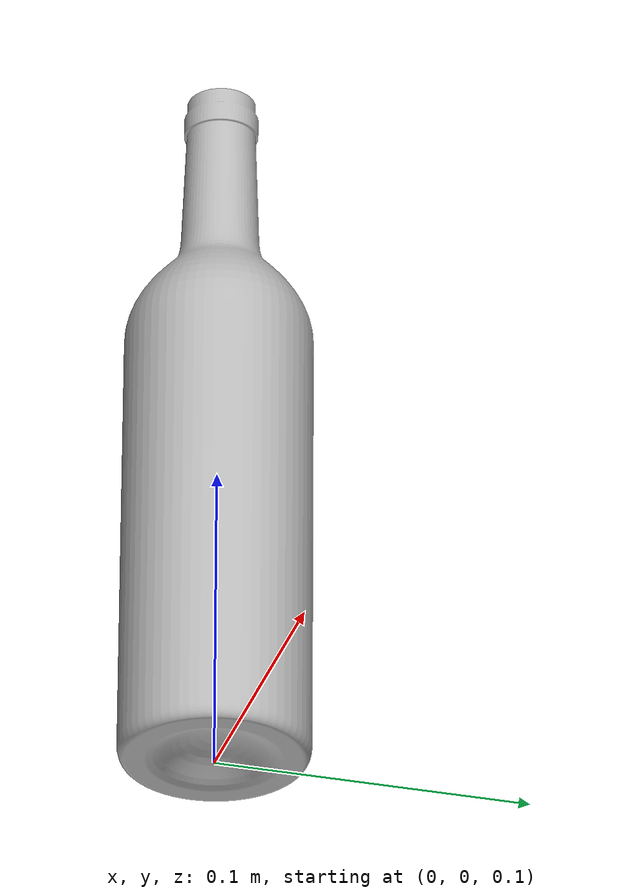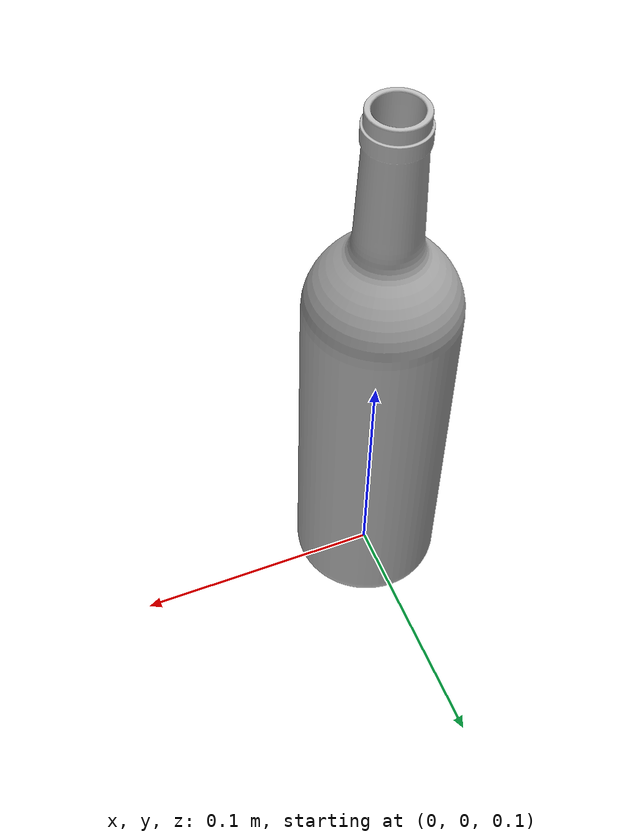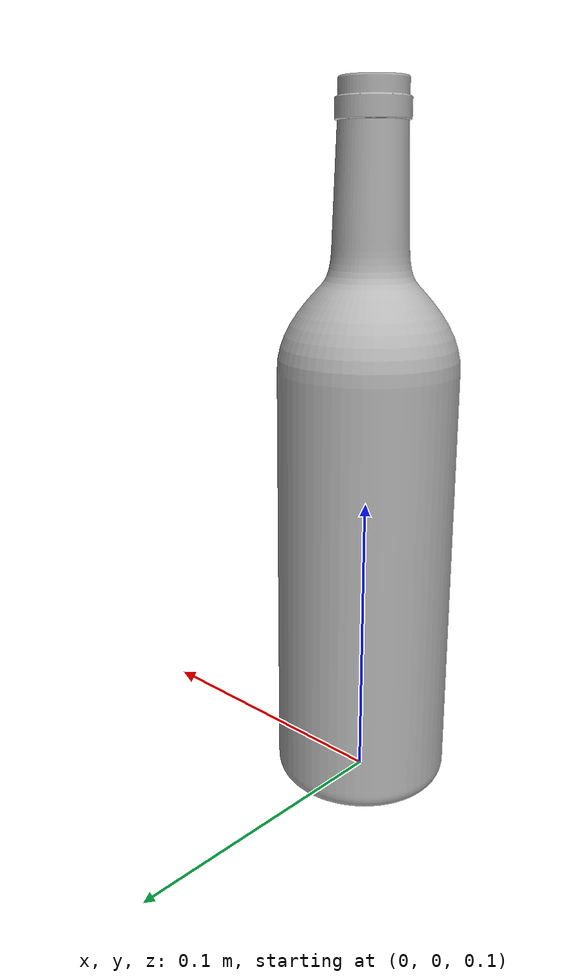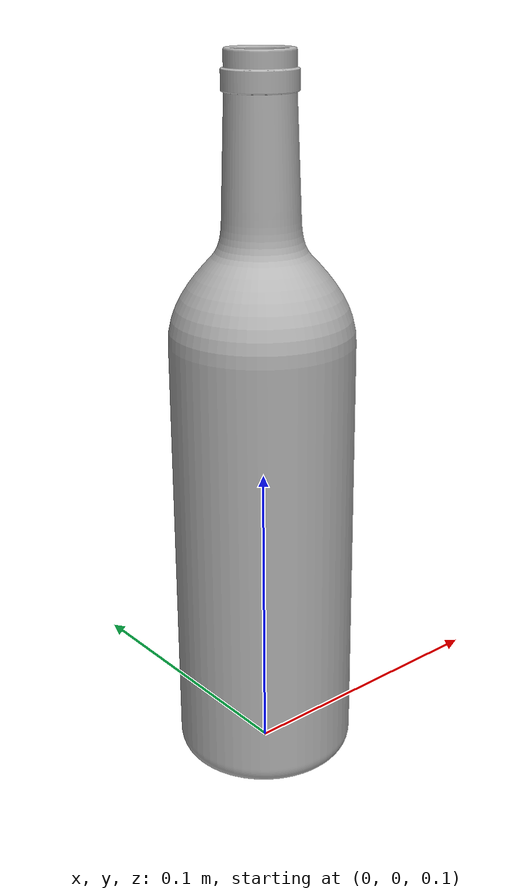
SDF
<?xml version="1.0" encoding="UTF-8"?>
<sdf version="1.5">
    <model name="round_table">
        <static>true</static>
        <link name="link">
            <collision name="collision">
                <pose>0 0 0.15 0 0 0</pose>
                <geometry>
                    <cylinder>
                        <radius>0.04</radius>
                        <length>0.30</length>
                    </cylinder>
                </geometry>
            </collision>

            <visual name="visual">
                <pose>0 0 0.1 1.57 0 0</pose>
                <geometry>
                    <mesh>
                        <uri>model://wine_bottle/meshes/bottle.dae</uri>
                        <scale>0.02 0.02 0.02</scale>
                    </mesh>
                </geometry>
                    <script>
                    </script>
                <material>
                </material>
            </visual>
        </link>
    </model>
</sdf>
